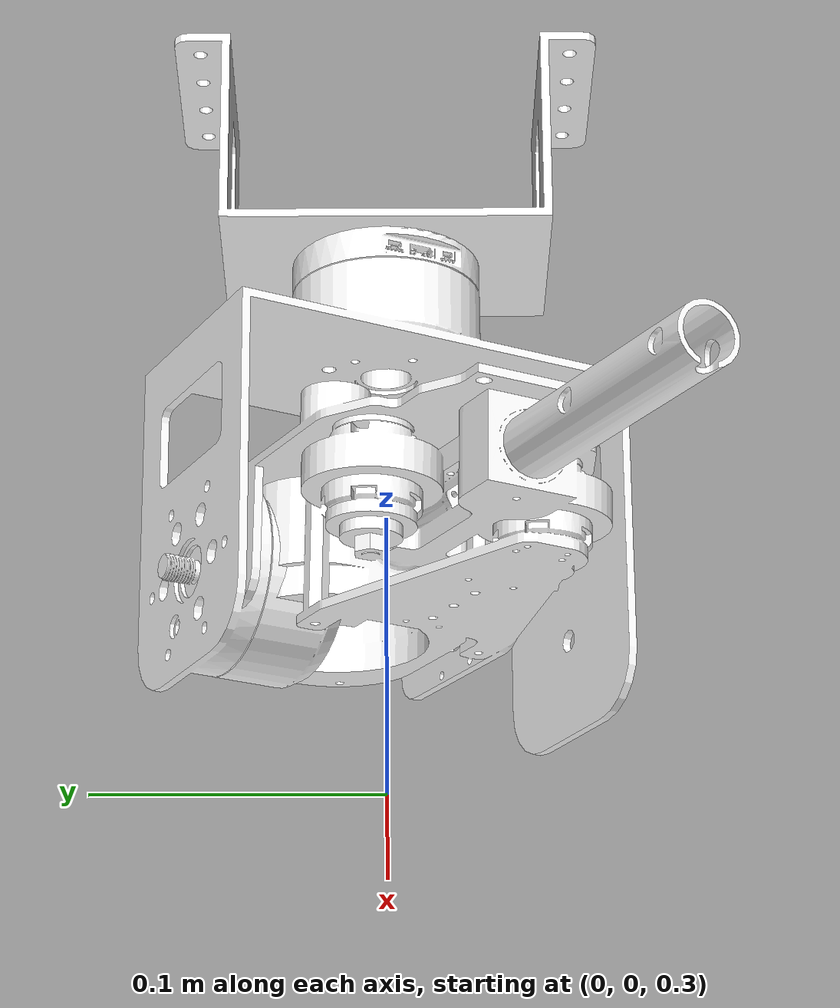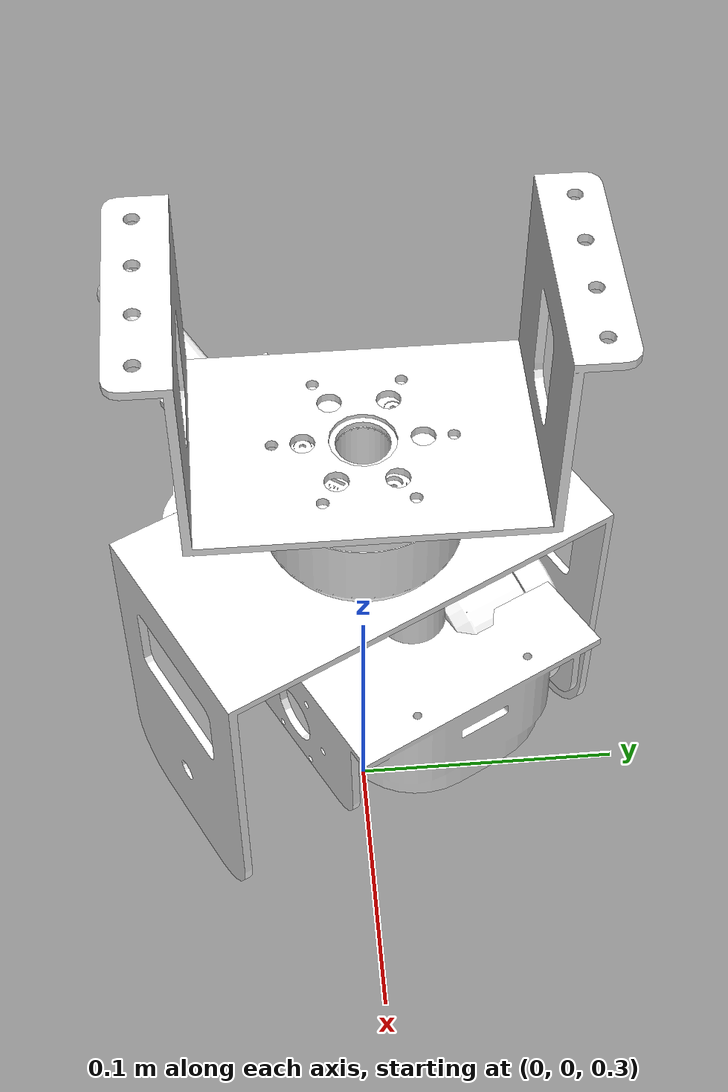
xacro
<?xml version="1.0"?>
<robot name="gimbal" xmlns:xacro="http://www.ros.org/wiki/xacro">
  <link name="base_link">
    <inertial>
      <origin xyz="3.15060006090828E-05 -4.71844785465692E-16 -0.0243287063686799" rpy="0 0 0" />
      <mass value="1.28319520304303" />
      <inertia
        ixx="0.000201918308570387"
        ixy="-1.62781063301312E-08"
        ixz="2.49360244993981E-08"
        iyy="8.47758736521156E-05"
        iyz="-1.0029928886675E-18"
        izz="0.000189481579220275" />
    </inertial>

    <visual>
        <origin xyz="0 0 0.5" rpy="3.1415 0 0" />
      <geometry>
        <mesh filename="package://gimbal_urdf/meshes/base_link.STL" />
      </geometry>
      	<material name=""> <color rgba="1 1 1 1" />
      </material>
    </visual>

    <collision>
      <origin xyz="0 0 0" rpy="0 0 0" />
      <geometry>
        <mesh filename="package://gimbal_urdf/meshes/base_link.STL" />
      </geometry>
    </collision>
  </link>
  <gazebo reference="base_link">
       <material>Gazebo/Gray</material>
  </gazebo>

  <link name="yaw_Link">
    <inertial>
      <origin xyz="8.4734916297402E-05 -0.0210567199604467 0.0350192020002941" rpy="0 0 0" />
      <mass value="0.620363041042481" />
      <inertia
	ixx="0.000635110656697903"
        ixy="2.83927165134778E-07"
        ixz="9.98398801233859E-07"
        iyy="0.000427297748120087"
        iyz="-7.69757745582108E-06"
        izz="0.000601934475765983" />
    </inertial>
    <gazebo reference="yaw_link">
       <material>Gazebo/Gray</material>
    </gazebo>

    <visual>
      <origin xyz="0 0 0" rpy="3.1415 0 0" />
      <geometry>
        <mesh filename="package://gimbal_urdf/meshes/yaw_Link.STL" />
      </geometry>
      <material name=""> <color rgba="1 1 1 1" />
      </material>
    </visual>

    <collision>
      <origin xyz="0 0 0" rpy="0 0 0" />
      <geometry>
        <mesh filename="package://gimbal_urdf/meshes/yaw_Link.STL" />
      </geometry>
    </collision>
  </link>

  <joint name="yaw_joint" type="continuous">
    <origin xyz="0 0 0.455" rpy="0 0 0.48284" />
    <parent link="base_link" />
    <child link="yaw_Link" />
    <axis xyz="0 0 1" />
    <limit lower="-3" upper="3" effort="0" velocity="0" />
  </joint>

  <link name="pitch_Link">
    <inertial>
      <origin xyz="-0.0500676134301025 0.0342025495228345 -0.0112331653769802" py="0 0 0" />
      <mass value="0.361088560734711" />
      <inertia
        ixx="0.000415536264346438"
        ixy="6.16430097683857E-07"
        ixz="1.18189085240469E-07"
        iyy="0.000230220737721965"
        iyz="1.41772657896547E-05"
        izz="0.000580282454503549" />
    </inertial>

    <visual>
      <origin xyz="0 0 0" rpy="3.1415 0 0" />
      <geometry>
        <mesh filename="package://gimbal_urdf/meshes/pitch_Link.STL" />
      </geometry>
	<material name=""> <color rgba="1 1 1 1" />
      </material>

    </visual>

    <collision>
      <origin xyz="0 0 0" rpy="0 0 0" />
      <geometry>
        <mesh filename="package://gimbal_urdf/meshes/pitch_Link.STL" />
      </geometry>
    </collision>
  </link>
  <gazebo reference="pitch_link">
       <material>Gazebo/Gray</material>
  </gazebo>

  <joint name="pitch_joint" type="continuous">
    <origin xyz="0 -0.03 -0.088" rpy="0.040757 0 -1.5708" />
    <parent link="yaw_Link" />
    <child link="pitch_Link" />
    <axis xyz="1 0 0" />
    <limit lower="-0.785" upper="0.785" effort="0" velocity="0" />
  </joint>

  <link name="zhoucheng_Link">
    <inertial>
      <origin xyz="0.000686124711460026 3.88451282251623E-09 2.54124357841612E-09" rpy="0 0 0" />
      <mass value="0" />
      <inertia
        ixx="2.0562871819405E-07"
        ixy="1.55409882357327E-13"
        ixz="-4.19235151298674E-11"
        iyy="1.80369543345785E-07"
        iyz="-9.48190155873362E-13"
        izz="1.80371953239631E-07" />
    </inertial>

    <visual>
      <origin xyz="0 0 0" rpy="3.1415 0 0" />
      <geometry>
        <mesh filename="package://gimbal_urdf/meshes/zhoucheng_Link.STL" />
      </geometry>
      <material name=""> <color rgba="1 1 1 1" />
      </material>

    </visual>
    <collision>
      <origin xyz="0 0 0" rpy="0 0 0" />
      <geometry>
        <mesh filename="package://gimbal_urdf/meshes/zhoucheng_Link.STL" />
      </geometry>

    </collision>
  </link>
  <gazebo reference="zhoucheng_link">
       <material>Gazebo/Gray</material>
  </gazebo>

  <joint name="zhoucheng_joint" type="continuous">
    <origin xyz="0 0.07 -0.088" rpy="0.040757 0 -1.5708" />
    <parent link="yaw_Link" />
    <child link="zhoucheng_Link" />
    <axis xyz="1 0 0" />
    <limit lower="-0.785" upper="0.785" effort="0" velocity="0" />
  </joint>

<!-- base_link & yaw_link & yaw_joint  -->
  <transmission name="tran1">
    <type>transmission_interface/SimpleTransmission</type>
    <joint name="yaw_joint">
      <hardwareInterface>EffortJointInterface</hardwareInterface>
    </joint>
    <actuator name="motor1">
      <hardwareInterface>EffortJointInterface</hardwareInterface>
      <mechanicalReduction>1</mechanicalReduction>
    </actuator>
  </transmission>
<!-- yaw_link & pitch_link & pitch_joint  -->
  <transmission name="tran2">
    <type>transmission_interface/SimpleTransmission</type>
    <joint name="pitch_joint">
      <hardwareInterface>EffortJointInterface</hardwareInterface>
    </joint>
    <actuator name="motor1">
      <hardwareInterface>EffortJointInterface</hardwareInterface>
      <mechanicalReduction>1</mechanicalReduction>
    </actuator>
  </transmission>
<!--  add gazebo_ros_control plugin  -->
  <gazebo>
      <plugin name="gazebo_ros_control" filename="libgazebo_ros_control.so">
        <robotNamespace>/gimbal</robotNamespace><!-- robot's name -->
        <controlPeriod>0.01</controlPeriod><!-- control period -->
        <robotSimType>gazebo_ros_control/DefaultRobotHWSim</robotSimType>
      </plugin>
   </gazebo>

</robot >
